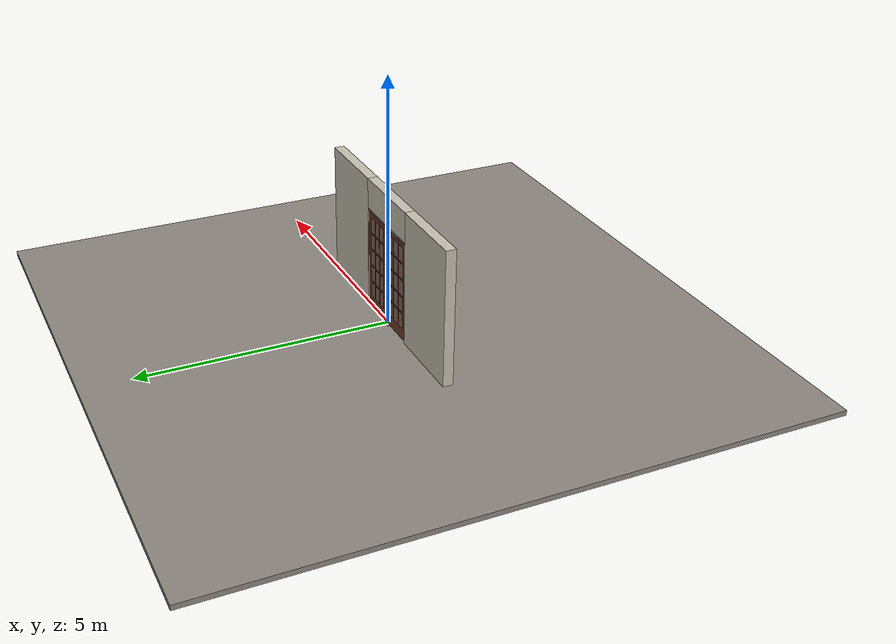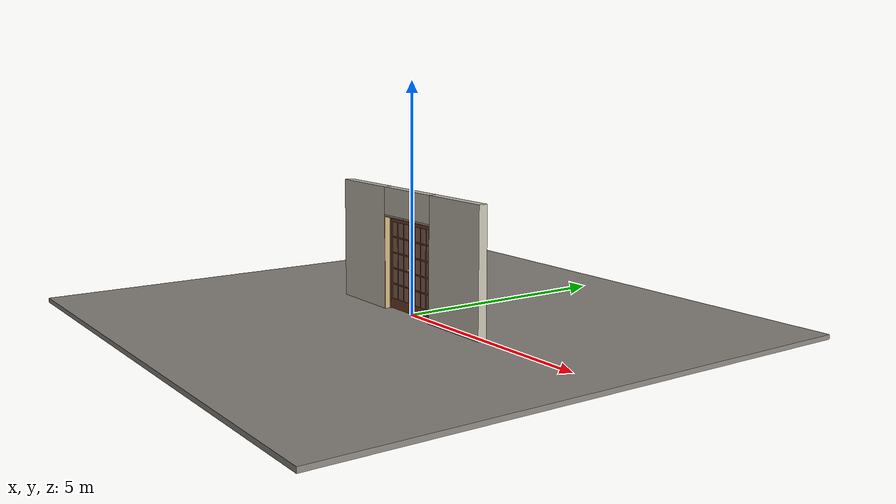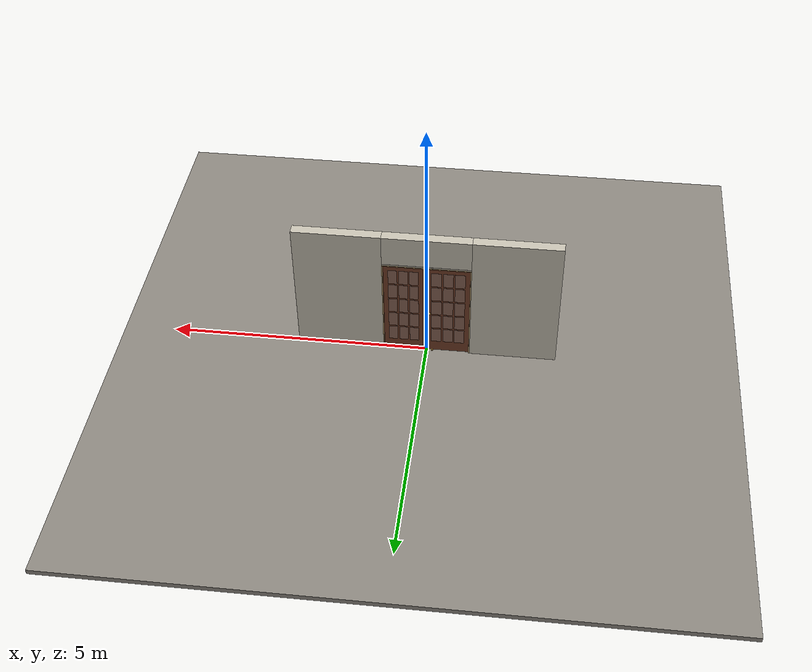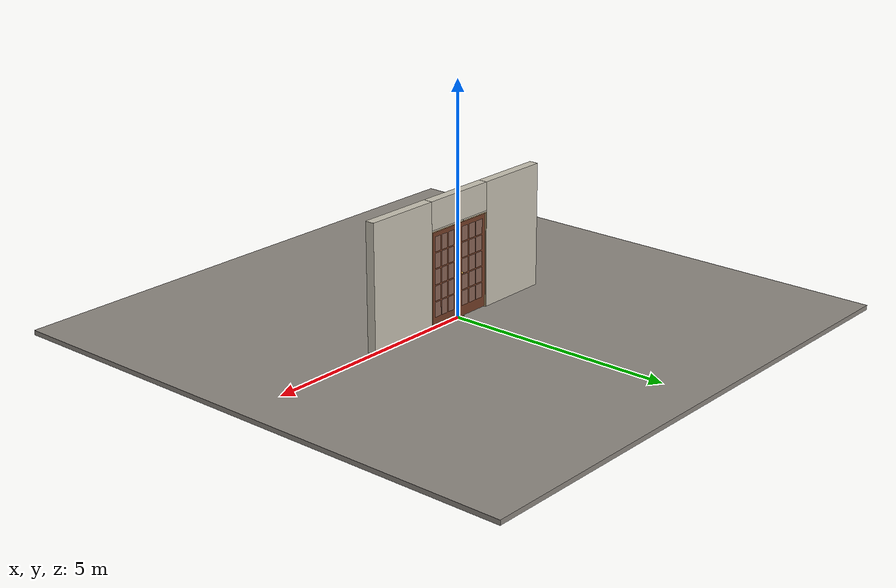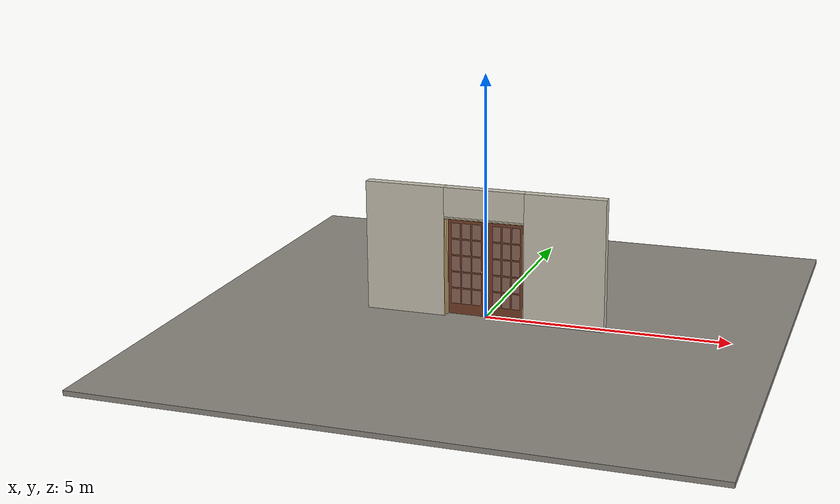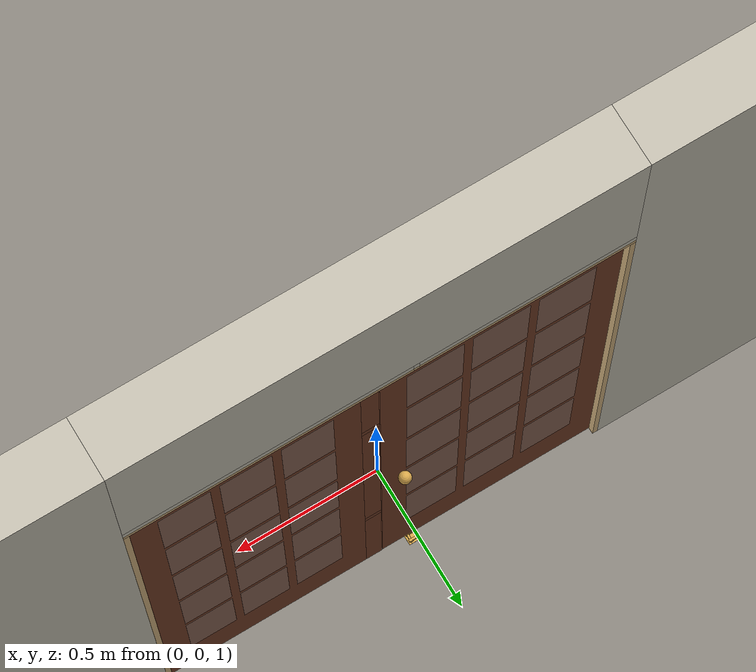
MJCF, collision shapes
<?xml version="1.0" ?>
<mujoco model="db0846_swing_double_minimal">
  <compiler angle="radian" meshdir="../../hardware" texturedir="../../textures" autolimits="true" inertiafromgeom="false"/>
  <option timestep="0.002" integrator="implicitfast" cone="elliptic" impratio="10" noslip_iterations="3">
    <flag multiccd="enable"/>
  </option>
  <size memory="16M"/>
  <default>
    <geom condim="4" solref="0.005 1" solimp="0.95 0.99 0.001"/>
    <joint solreflimit="0.005 1" solimplimit="0.95 0.99 0.001"/>
    <tendon solreflimit="0.005 1"/>
    <equality solref="0.002 1"/>
  </default>
  <visual>
    <headlight ambient="0.4 0.4 0.4" diffuse="0.7 0.7 0.7" specular="0.2 0.2 0.2"/>
    <quality shadowsize="4096"/>
    <map znear="0.01" zfar="60"/>
  </visual>
  <asset>
    <mesh name="knob_9525440cc3" file="knob_9525440cc3.obj"/>
    <material name="mat_floor" rgba="0.55 0.53 0.5 1" specular="0.2" shininess="0.15" reflectance="0"/>
    <material name="mat_wall" rgba="0.78 0.76 0.7 1" specular="0.2" shininess="0.1" reflectance="0"/>
    <material name="mat_leaf_a" rgba="0.45 0.24 0.15 1" specular="0.2" shininess="0.55" reflectance="0"/>
    <material name="mat_glass" rgba="0.85 0.92 0.95 0.25" specular="0.2" shininess="0.95" reflectance="0.1"/>
    <material name="mat_hinge" rgba="0.65 0.66 0.68 1" specular="0.74" shininess="0.5" reflectance="0.36"/>
    <material name="mat_op_brass" rgba="0.85 0.66 0.3 1" specular="0.8" shininess="0.75" reflectance="0.4"/>
    <material name="mat_trim" rgba="0.85 0.66 0.3 1" specular="0.8" shininess="0.75" reflectance="0.4"/>
    <material name="mat_deadbolt" rgba="0.85 0.66 0.3 1" specular="0.8" shininess="0.75" reflectance="0.4"/>
    <material name="mat_leaf_b" rgba="0.45 0.24 0.15 1" specular="0.2" shininess="0.55" reflectance="0"/>
    <material name="mat_frame" rgba="0.82 0.7 0.5 1" specular="0.2" shininess="0.45" reflectance="0"/>
    <material name="mat_astragal" rgba="0.8 0.81 0.83 1" specular="0.8" shininess="0.6" reflectance="0.4"/>
    <texture name="skybox" type="skybox" builtin="gradient" rgb1="0.6 0.7 0.85" rgb2="0.9 0.92 0.95" width="256" height="256"/>
  </asset>
  <worldbody>
    <light name="sun" pos="1.5 -2.5 4" dir="-0.3 0.5 -0.8" directional="true" diffuse="0.8 0.8 0.8" specular="0.3 0.3 0.3" castshadow="true"/>
    <light name="fill" pos="-1.5 2.5 3" dir="0.3 -0.5 -0.7" directional="true" diffuse="0.35 0.35 0.4" castshadow="false"/>
    <camera name="robot_view" pos="0 -2.600187 1.734312" xyaxes="1 0 0 0 0.26963 0.962964" fovy="52"/>
    <camera name="far_view" pos="0 2.484187 1.734312" xyaxes="-1 0 0 0 -0.26963 0.962964" fovy="52"/>
    <camera name="iso" pos="-1.932062 -2.193437 2.141063" xyaxes="0.741536 -0.670913 0 0.242917 0.268487 0.932151" fovy="46"/>
    <camera name="detail_handle" pos="0.1135 -0.857 1.245" xyaxes="0.97561 0.219512 0 -0.070934 0.315262 0.94635" fovy="38"/>
    <geom name="floor" type="box" size="6 6 0.05" pos="0 0 -0.05" material="mat_floor" group="0" contype="1" conaffinity="1" friction="0.8 0.005 0.0001" density="2400"/>
    <geom name="wall_left" type="box" size="0.83175 0.1 1.35" pos="-1.66825 -0.058 1.35" material="mat_wall" group="0" contype="1" conaffinity="1" friction="0.6 0.005 0.0001" density="800"/>
    <geom name="wall_right" type="box" size="0.83175 0.1 1.35" pos="1.66825 -0.058 1.35" material="mat_wall" group="0" contype="1" conaffinity="1" friction="0.6 0.005 0.0001" density="800"/>
    <geom name="wall_header" type="box" size="0.8365 0.1 0.303" pos="0 -0.058 2.397" material="mat_wall" group="0" contype="1" conaffinity="1" friction="0.6 0.005 0.0001" density="800"/>
    <geom name="leaf_a_cremone_floor_strike_plate" type="box" size="0.023 0.023 0.00075" pos="-0.1115 0.031 0.00075" material="mat_op_brass" group="0" contype="1" conaffinity="1" friction="0.6 0.005 0.0001" density="7850"/>
    <geom name="leaf_a_cremone_floor_strike_p" type="box" size="0.019 0.004 0.00575" pos="-0.1115 0.043 0.00725" material="mat_op_brass" group="0" contype="1" conaffinity="1" friction="0.6 0.005 0.0001" density="7850"/>
    <geom name="leaf_a_cremone_floor_strike_n" type="box" size="0.019 0.004 0.00575" pos="-0.1115 0.019 0.00725" material="mat_op_brass" group="0" contype="1" conaffinity="1" friction="0.6 0.005 0.0001" density="7850"/>
    <geom name="leaf_a_cremone_floor_strike_e" type="box" size="0.004 0.019 0.00575" pos="-0.0995 0.031 0.00725" material="mat_op_brass" group="0" contype="1" conaffinity="1" friction="0.6 0.005 0.0001" density="7850"/>
    <geom name="jamb_l" type="box" size="0.0095 0.1 1.0225" pos="-0.827 -0.058 1.0225" material="mat_frame" group="0" contype="1" conaffinity="1" friction="0.6 0.005 0.0001" density="300"/>
    <geom name="jamb_r" type="box" size="0.0095 0.1 1.0225" pos="0.827 -0.058 1.0225" material="mat_frame" group="0" contype="1" conaffinity="1" friction="0.6 0.005 0.0001" density="300"/>
    <geom name="jamb_head_pwall_-111_n" type="box" size="0.01 0.09075 0.0095" pos="-0.1115 -0.06725 2.0545" material="mat_frame" group="0" contype="1" conaffinity="1" friction="0.6 0.005 0.0001" density="300"/>
    <geom name="jamb_head_pwall_-111_p" type="box" size="0.01 0.00175 0.0095" pos="-0.1115 0.04025 2.0545" material="mat_frame" group="0" contype="1" conaffinity="1" friction="0.6 0.005 0.0001" density="300"/>
    <geom name="jamb_head_0" type="box" size="0.3575 0.1 0.0095" pos="-0.479 -0.058 2.0545" material="mat_frame" group="0" contype="1" conaffinity="1" friction="0.6 0.005 0.0001" density="300"/>
    <geom name="jamb_head_1" type="box" size="0.469 0.1 0.0095" pos="0.3675 -0.058 2.0545" material="mat_frame" group="0" contype="1" conaffinity="1" friction="0.6 0.005 0.0001" density="300"/>
    <geom name="head_stud_pwall_-111_n" type="box" size="0.01 0.09075 0.015" pos="-0.1115 -0.06725 2.079" material="mat_wall" group="0" contype="1" conaffinity="1" friction="0.6 0.005 0.0001" density="500"/>
    <geom name="head_stud_pwall_-111_p" type="box" size="0.01 0.00175 0.015" pos="-0.1115 0.04025 2.079" material="mat_wall" group="0" contype="1" conaffinity="1" friction="0.6 0.005 0.0001" density="500"/>
    <geom name="head_stud_pback_-111" type="box" size="0.01 0.0075 0.0115" pos="-0.1115 0.031 2.0825" material="mat_wall" group="0" contype="1" conaffinity="1" friction="0.6 0.005 0.0001" density="500"/>
    <geom name="head_stud_0" type="box" size="0.3575 0.1 0.015" pos="-0.479 -0.058 2.079" material="mat_wall" group="0" contype="1" conaffinity="1" friction="0.6 0.005 0.0001" density="500"/>
    <geom name="head_stud_1" type="box" size="0.469 0.1 0.015" pos="0.3675 -0.058 2.079" material="mat_wall" group="0" contype="1" conaffinity="1" friction="0.6 0.005 0.0001" density="500"/>
    <geom name="stop_l" type="box" size="0.015 0.006 1.0225" pos="-0.8025 -0.0285 1.0225" material="mat_frame" group="0" contype="1" conaffinity="1" friction="0.6 0.005 0.0001" density="300"/>
    <geom name="stop_r" type="box" size="0.015 0.006 1.0225" pos="0.8025 -0.0285 1.0225" material="mat_frame" group="0" contype="1" conaffinity="1" friction="0.6 0.005 0.0001" density="300"/>
    <geom name="stop_head" type="box" size="0.8175 0.006 0.015" pos="0 -0.0285 2.03" material="mat_frame" group="0" contype="1" conaffinity="1" friction="0.6 0.005 0.0001" density="300"/>
    <site name="approach_point" pos="0 -1.5 0" quat="1 0 0 0" size="0.05" rgba="0.2 0.9 0.2 0.5" group="4"/>
    <site name="goal_point" pos="0 1.5 0" quat="1 0 0 0" size="0.05" rgba="0.2 0.9 0.2 0.5" group="4"/>
    <site name="door_plane_center" pos="0 0 1.0225" quat="1 0 0 0" size="0.02" rgba="0.2 0.9 0.2 0.5" group="4"/>
    <site name="approach_point_2" pos="0 -1.5 0" quat="1 0 0 0" size="0.05" rgba="0.2 0.9 0.2 0.5" group="4"/>
    <site name="goal_point_2" pos="0 1.5 0" quat="1 0 0 0" size="0.05" rgba="0.2 0.9 0.2 0.5" group="4"/>
    <site name="door_plane_center_2" pos="0 0 1.0225" quat="1 0 0 0" size="0.02" rgba="0.2 0.9 0.2 0.5" group="4"/>
    <site name="approach_point_3" pos="0 -1.5 0" quat="1 0 0 0" size="0.05" rgba="0.2 0.9 0.2 0.5" group="4"/>
    <site name="goal_point_3" pos="0 1.5 0" quat="1 0 0 0" size="0.05" rgba="0.2 0.9 0.2 0.5" group="4"/>
    <site name="door_plane_center_3" pos="0 0 1.0225" quat="1 0 0 0" size="0.02" rgba="0.2 0.9 0.2 0.5" group="4"/>
    <body name="leaf_a" pos="-0.8175 0 0">
      <inertial pos="0.4095 0 1.02863" mass="35.235615" quat="-0.5 -0.5 -0.5 0.5" diaginertia="1.945022241 12.039576468 13.97322755"/>
      <joint name="leaf_a_hinge" type="hinge" axis="0 0 1" pos="0.003 0.029 0" limited="true" range="0 1.919862" solreflimit="0.02 1" damping="0.210326" frictionloss="7.292966" armature="0.02"/>
      <geom name="leaf_a_slab" type="box" size="0.4065 0.022 1.0125" pos="0.4095 0 1.0285" material="mat_leaf_a" group="0" contype="1" conaffinity="1" friction="0.35 0.005 0.0001" density="1"/>
      <geom name="leaf_a_glass_0" type="box" size="0.0955 0.0228 0.1581" pos="0.1885 0 0.39685" material="mat_glass" group="1" contype="0" conaffinity="0" density="1"/>
      <geom name="leaf_a_glass_1" type="box" size="0.0955 0.0228 0.1581" pos="0.4095 0 0.39685" material="mat_glass" group="1" contype="0" conaffinity="0" density="1"/>
      <geom name="leaf_a_glass_2" type="box" size="0.0955 0.0228 0.1581" pos="0.6305 0 0.39685" material="mat_glass" group="1" contype="0" conaffinity="0" density="1"/>
      <geom name="leaf_a_glass_3" type="box" size="0.0955 0.0228 0.1581" pos="0.1885 0 0.74305" material="mat_glass" group="1" contype="0" conaffinity="0" density="1"/>
      <geom name="leaf_a_glass_4" type="box" size="0.0955 0.0228 0.1581" pos="0.4095 0 0.74305" material="mat_glass" group="1" contype="0" conaffinity="0" density="1"/>
      <geom name="leaf_a_glass_5" type="box" size="0.0955 0.0228 0.1581" pos="0.6305 0 0.74305" material="mat_glass" group="1" contype="0" conaffinity="0" density="1"/>
      <geom name="leaf_a_glass_6" type="box" size="0.0955 0.0228 0.1581" pos="0.1885 0 1.08925" material="mat_glass" group="1" contype="0" conaffinity="0" density="1"/>
      <geom name="leaf_a_glass_7" type="box" size="0.0955 0.0228 0.1581" pos="0.4095 0 1.08925" material="mat_glass" group="1" contype="0" conaffinity="0" density="1"/>
      <geom name="leaf_a_glass_8" type="box" size="0.0955 0.0228 0.1581" pos="0.6305 0 1.08925" material="mat_glass" group="1" contype="0" conaffinity="0" density="1"/>
      <geom name="leaf_a_glass_9" type="box" size="0.0955 0.0228 0.1581" pos="0.1885 0 1.43545" material="mat_glass" group="1" contype="0" conaffinity="0" density="1"/>
      <geom name="leaf_a_glass_10" type="box" size="0.0955 0.0228 0.1581" pos="0.4095 0 1.43545" material="mat_glass" group="1" contype="0" conaffinity="0" density="1"/>
      <geom name="leaf_a_glass_11" type="box" size="0.0955 0.0228 0.1581" pos="0.6305 0 1.43545" material="mat_glass" group="1" contype="0" conaffinity="0" density="1"/>
      <geom name="leaf_a_glass_12" type="box" size="0.0955 0.0228 0.1581" pos="0.1885 0 1.78165" material="mat_glass" group="1" contype="0" conaffinity="0" density="1"/>
      <geom name="leaf_a_glass_13" type="box" size="0.0955 0.0228 0.1581" pos="0.4095 0 1.78165" material="mat_glass" group="1" contype="0" conaffinity="0" density="1"/>
      <geom name="leaf_a_glass_14" type="box" size="0.0955 0.0228 0.1581" pos="0.6305 0 1.78165" material="mat_glass" group="1" contype="0" conaffinity="0" density="1"/>
      <site name="leaf_a_edge_mid" pos="0.816 0 1.0125" quat="1 0 0 0" size="0.02" rgba="0.2 0.9 0.2 0.5" group="4"/>
      <body name="leaf_a_handle" pos="0.751 0 0.965">
        <inertial pos="0 0 0" mass="0.679046" quat="-0.5 0.5 -0.5 0.5" diaginertia="0.000140287 0.002046641 0.002046641"/>
        <joint name="leaf_a_handle_hinge" type="hinge" axis="0 -1 0" limited="true" range="0 1.5708" damping="0.5" frictionloss="0.4" armature="0.01"/>
        <geom name="leaf_a_handle_cremone_knob_n" type="mesh" mesh="knob_9525440cc3" pos="0 -0.022 0" quat="0.707107 0.707107 0 0" material="mat_op_brass" group="1" contype="0" conaffinity="0" density="3000"/>
        <geom name="leaf_a_handle_cremone_col_n" type="sphere" size="0.022" pos="0 -0.057 0" material="mat_op_brass" group="0" contype="1" conaffinity="1" friction="0.6 0.005 0.0001" density="3000"/>
        <geom name="leaf_a_handle_cremone_knob_p" type="mesh" mesh="knob_9525440cc3" pos="0 0.022 0" quat="-0.707107 0.707107 0 0" material="mat_op_brass" group="1" contype="0" conaffinity="0" density="3000"/>
        <geom name="leaf_a_handle_cremone_col_p" type="sphere" size="0.022" pos="0 0.057 0" material="mat_op_brass" group="0" contype="1" conaffinity="1" friction="0.6 0.005 0.0001" density="3000"/>
        <site name="leaf_a_handle_grip_n" pos="0 -0.057 0" quat="1 0 0 0" size="0.012" rgba="0.2 0.9 0.2 0.5" group="4"/>
        <site name="leaf_a_handle_grip_p" pos="0 0.057 0" quat="1 0 0 0" size="0.012" rgba="0.2 0.9 0.2 0.5" group="4"/>
      </body>
    </body>
    <body name="leaf_b" pos="0.8175 0 0">
      <inertial pos="-0.379612 0 1.025117" mass="34.301641" quat="0.5 -0.5 0.5 0.5" diaginertia="1.626250834 11.802265174 13.417446418"/>
      <joint name="leaf_b_hinge" type="hinge" axis="0 0 -1" pos="-0.003 0.029 0" limited="true" range="0 0.001" solreflimit="0.02 1" damping="0.210326" frictionloss="7.292966" armature="0.02"/>
      <geom name="leaf_b_edge_555_wall_n" type="box" size="0.03 0.00625 0.0155" pos="-0.786 -0.01575 0.555" material="mat_leaf_b" group="0" contype="1" conaffinity="1" friction="0.6 0.005 0.0001" density="1"/>
      <geom name="leaf_b_edge_555_wall_p" type="box" size="0.03 0.00625 0.0155" pos="-0.786 0.01575 0.555" material="mat_leaf_b" group="0" contype="1" conaffinity="1" friction="0.6 0.005 0.0001" density="1"/>
      <geom name="leaf_b_edge_555_back" type="box" size="0.018 0.0095 0.0155" pos="-0.774 0 0.555" material="mat_leaf_b" group="0" contype="1" conaffinity="1" friction="0.6 0.005 0.0001" density="1"/>
      <geom name="leaf_b_edge_1105_wall_n" type="box" size="0.03 0.00625 0.0155" pos="-0.786 -0.01575 1.105" material="mat_leaf_b" group="0" contype="1" conaffinity="1" friction="0.6 0.005 0.0001" density="1"/>
      <geom name="leaf_b_edge_1105_wall_p" type="box" size="0.03 0.00625 0.0155" pos="-0.786 0.01575 1.105" material="mat_leaf_b" group="0" contype="1" conaffinity="1" friction="0.6 0.005 0.0001" density="1"/>
      <geom name="leaf_b_edge_1105_back" type="box" size="0.018 0.0095 0.0155" pos="-0.774 0 1.105" material="mat_leaf_b" group="0" contype="1" conaffinity="1" friction="0.6 0.005 0.0001" density="1"/>
      <geom name="leaf_b_edge_1605_wall_n" type="box" size="0.03 0.00625 0.0155" pos="-0.786 -0.01575 1.605" material="mat_leaf_b" group="0" contype="1" conaffinity="1" friction="0.6 0.005 0.0001" density="1"/>
      <geom name="leaf_b_edge_1605_wall_p" type="box" size="0.03 0.00625 0.0155" pos="-0.786 0.01575 1.605" material="mat_leaf_b" group="0" contype="1" conaffinity="1" friction="0.6 0.005 0.0001" density="1"/>
      <geom name="leaf_b_edge_1605_back" type="box" size="0.018 0.0095 0.0155" pos="-0.774 0 1.605" material="mat_leaf_b" group="0" contype="1" conaffinity="1" friction="0.6 0.005 0.0001" density="1"/>
      <geom name="leaf_b_edge_seg_0" type="box" size="0.03 0.022 0.26525" pos="-0.786 0 0.27425" material="mat_leaf_b" group="0" contype="1" conaffinity="1" friction="0.6 0.005 0.0001" density="1"/>
      <geom name="leaf_b_edge_seg_1" type="box" size="0.03 0.022 0.2595" pos="-0.786 0 0.83" material="mat_leaf_b" group="0" contype="1" conaffinity="1" friction="0.6 0.005 0.0001" density="1"/>
      <geom name="leaf_b_edge_seg_2" type="box" size="0.03 0.022 0.2345" pos="-0.786 0 1.355" material="mat_leaf_b" group="0" contype="1" conaffinity="1" friction="0.6 0.005 0.0001" density="1"/>
      <geom name="leaf_b_edge_seg_3" type="box" size="0.03 0.022 0.21025" pos="-0.786 0 1.83075" material="mat_leaf_b" group="0" contype="1" conaffinity="1" friction="0.6 0.005 0.0001" density="1"/>
      <geom name="leaf_b_slab" type="box" size="0.3765 0.022 1.016" pos="-0.3795 0 1.025" material="mat_leaf_b" group="0" contype="1" conaffinity="1" friction="0.35 0.005 0.0001" density="1"/>
      <geom name="leaf_b_glass_0" type="box" size="0.0855 0.0228 0.158688" pos="-0.1785 0 0.391208" material="mat_glass" group="1" contype="0" conaffinity="0" density="1"/>
      <geom name="leaf_b_glass_1" type="box" size="0.0855 0.0228 0.158688" pos="-0.3795 0 0.391208" material="mat_glass" group="1" contype="0" conaffinity="0" density="1"/>
      <geom name="leaf_b_glass_2" type="box" size="0.0855 0.0228 0.158688" pos="-0.5805 0 0.391208" material="mat_glass" group="1" contype="0" conaffinity="0" density="1"/>
      <geom name="leaf_b_glass_3" type="box" size="0.0855 0.0228 0.158688" pos="-0.1785 0 0.738584" material="mat_glass" group="1" contype="0" conaffinity="0" density="1"/>
      <geom name="leaf_b_glass_4" type="box" size="0.0855 0.0228 0.158688" pos="-0.3795 0 0.738584" material="mat_glass" group="1" contype="0" conaffinity="0" density="1"/>
      <geom name="leaf_b_glass_5" type="box" size="0.0855 0.0228 0.158688" pos="-0.5805 0 0.738584" material="mat_glass" group="1" contype="0" conaffinity="0" density="1"/>
      <geom name="leaf_b_glass_6" type="box" size="0.0855 0.0228 0.158688" pos="-0.1785 0 1.08596" material="mat_glass" group="1" contype="0" conaffinity="0" density="1"/>
      <geom name="leaf_b_glass_7" type="box" size="0.0855 0.0228 0.158688" pos="-0.3795 0 1.08596" material="mat_glass" group="1" contype="0" conaffinity="0" density="1"/>
      <geom name="leaf_b_glass_8" type="box" size="0.0855 0.0228 0.158688" pos="-0.5805 0 1.08596" material="mat_glass" group="1" contype="0" conaffinity="0" density="1"/>
      <geom name="leaf_b_glass_9" type="box" size="0.0855 0.0228 0.158688" pos="-0.1785 0 1.433336" material="mat_glass" group="1" contype="0" conaffinity="0" density="1"/>
      <geom name="leaf_b_glass_10" type="box" size="0.0855 0.0228 0.158688" pos="-0.3795 0 1.433336" material="mat_glass" group="1" contype="0" conaffinity="0" density="1"/>
      <geom name="leaf_b_glass_11" type="box" size="0.0855 0.0228 0.158688" pos="-0.5805 0 1.433336" material="mat_glass" group="1" contype="0" conaffinity="0" density="1"/>
      <geom name="leaf_b_glass_12" type="box" size="0.0855 0.0228 0.158688" pos="-0.1785 0 1.780712" material="mat_glass" group="1" contype="0" conaffinity="0" density="1"/>
      <geom name="leaf_b_glass_13" type="box" size="0.0855 0.0228 0.158688" pos="-0.3795 0 1.780712" material="mat_glass" group="1" contype="0" conaffinity="0" density="1"/>
      <geom name="leaf_b_glass_14" type="box" size="0.0855 0.0228 0.158688" pos="-0.5805 0 1.780712" material="mat_glass" group="1" contype="0" conaffinity="0" density="1"/>
      <site name="leaf_b_edge_mid" pos="-0.816 0 1.016" quat="1 0 0 0" size="0.02" rgba="0.2 0.9 0.2 0.5" group="4"/>
    </body>
  </worldbody>
  <sensor>
    <jointpos name="leaf_a_hinge_pos" joint="leaf_a_hinge"/>
    <jointvel name="leaf_a_hinge_vel" joint="leaf_a_hinge"/>
    <jointpos name="leaf_a_handle_hinge_pos" joint="leaf_a_handle_hinge"/>
    <jointvel name="leaf_a_handle_hinge_vel" joint="leaf_a_handle_hinge"/>
    <jointpos name="leaf_b_hinge_pos" joint="leaf_b_hinge"/>
    <jointvel name="leaf_b_hinge_vel" joint="leaf_b_hinge"/>
  </sensor>
</mujoco>
